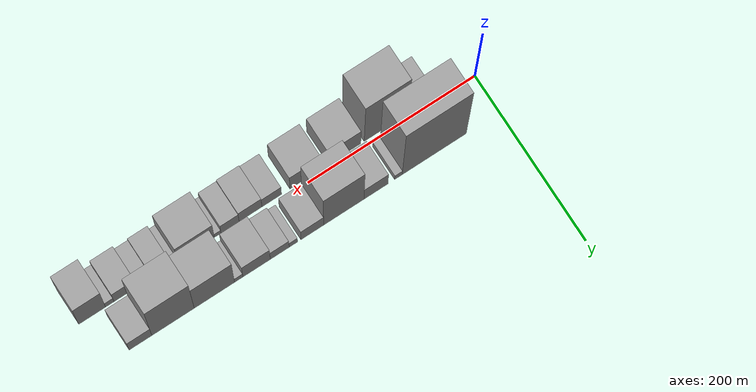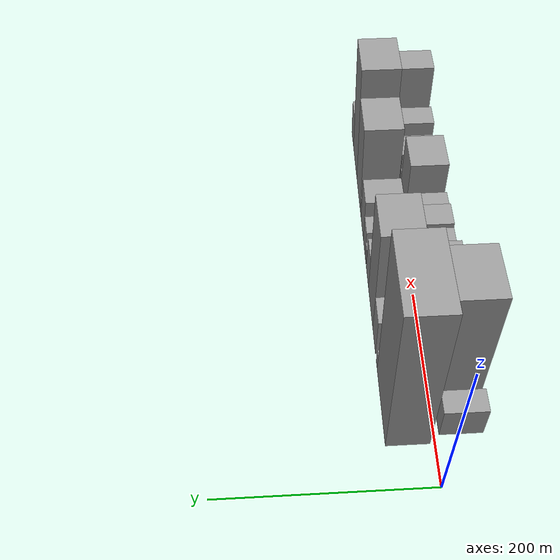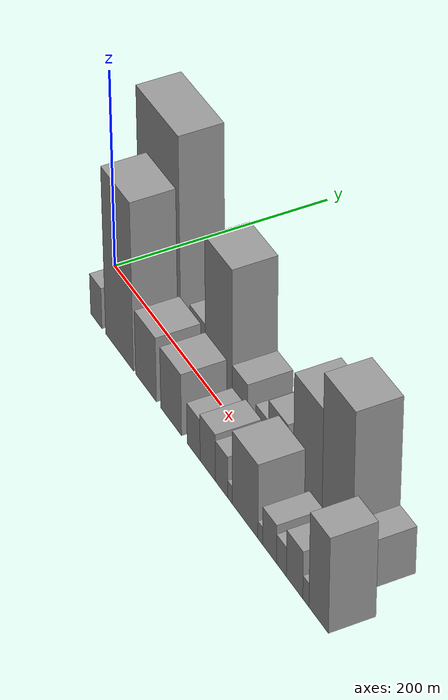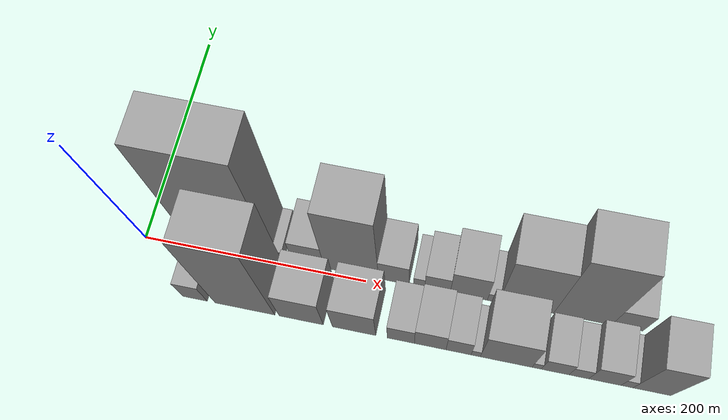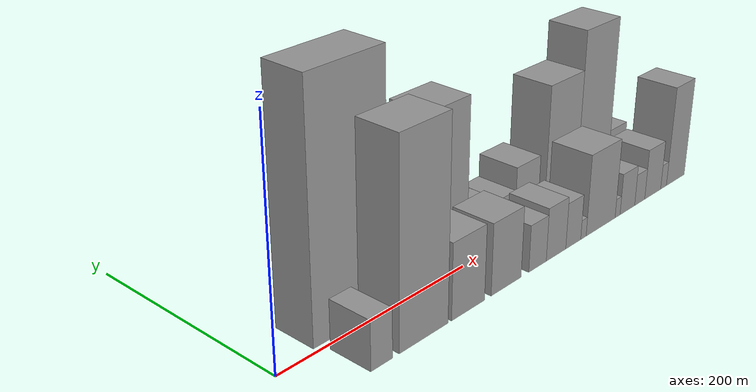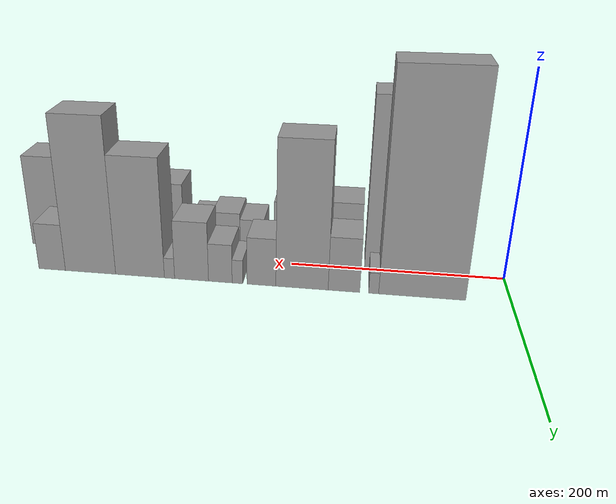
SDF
<sdf version="1.6">
 <world name="default">
  <scene>
   <sky><clouds><speed>12</speed></clouds></sky>
   <ambient>0.4 0.4 0.4 1</ambient>
   <background>0.7 0.7 0.7 1</background>
   <shadows>1</shadows>
  </scene>
  <gravity>0 0 -9.8066</gravity>
  <magnetic_field>6e-06 2.3e-05 -4.2e-05</magnetic_field>
  <physics default="0" name="default_physics" type="ode">
   <ode>
    <solver>
     <type>quick</type>
     <iters>10</iters>
     <sor>1.0</sor>
     <use_dynamic_moi_rescaling>0</use_dynamic_moi_rescaling>
    </solver>
    <constraints>
     <cfm>0</cfm>
     <erp>0.2</erp>
     <contact_max_correcting_vel>100</contact_max_correcting_vel>
     <contact_surface_layer>0.001</contact_surface_layer>
    </constraints>
   </ode>
   <max_step_size>0.004</max_step_size>
   <real_time_factor>1</real_time_factor>
   <real_time_update_rate>250</real_time_update_rate>
  </physics>
  <light name="sun" type="directional">
   <pose>0 0 10 0 0 0</pose>
   <diffuse>0.8 0.8 0.8 1</diffuse>
   <specular>0.2 0.2 0.2 1</specular>
   <attenuation>
    <range>1000</range>
    <constant>0.9</constant>
    <linear>0.01</linear>
    <quadratic>0.001</quadratic>
   </attenuation>
   <direction>-0.5 0.1 -0.9</direction>
  </light>
  <model name="building_1">
   <static>1</static>
   <pose>78.3208 24.5000 0 0.000000 0.000000 1.570796</pose>
   <link name="link">
    <pose>0 0 105.00 0 0 0</pose>
    <collision name="collision"><geometry><box><size>40.0000 76.6416 210.0000</size></box></geometry></collision>
    <visual name="visual">
     <cast_shadows>0</cast_shadows>
     <geometry><box><size>40.0000 76.6416 210.0000</size></box></geometry>
     <material>
      <script>
       <uri>model://grey_wall/materials/scripts</uri>
       <uri>model://grey_wall/materials/textures</uri>
       <name>vrc/grey_wall</name>
      </script>
     </material>
    </visual>
   </link>
  </model>
  <model name="building_2">
   <static>1</static>
   <pose>121.1165 24.5000 0 0.000000 0.000000 1.570796</pose>
   <link name="link">
    <pose>0 0 10.50 0 0 0</pose>
    <collision name="collision"><geometry><box><size>40.0000 8.9498 21.0000</size></box></geometry></collision>
    <visual name="visual">
     <cast_shadows>0</cast_shadows>
     <geometry><box><size>40.0000 8.9498 21.0000</size></box></geometry>
     <material>
      <script>
       <uri>model://grey_wall/materials/scripts</uri>
       <uri>model://grey_wall/materials/textures</uri>
       <name>vrc/grey_wall</name>
      </script>
     </material>
    </visual>
   </link>
  </model>
  <model name="building_3">
   <static>1</static>
   <pose>147.8958 24.5000 0 0.000000 0.000000 1.570796</pose>
   <link name="link">
    <pose>0 0 27.00 0 0 0</pose>
    <collision name="collision"><geometry><box><size>40.0000 28.6089 54.0000</size></box></geometry></collision>
    <visual name="visual">
     <cast_shadows>0</cast_shadows>
     <geometry><box><size>40.0000 28.6089 54.0000</size></box></geometry>
     <material>
      <script>
       <uri>model://grey_wall/materials/scripts</uri>
       <uri>model://grey_wall/materials/textures</uri>
       <name>vrc/grey_wall</name>
      </script>
     </material>
    </visual>
   </link>
  </model>
  <model name="building_4">
   <static>1</static>
   <pose>186.2172 24.5000 0 0.000000 0.000000 1.570796</pose>
   <link name="link">
    <pose>0 0 72.00 0 0 0</pose>
    <collision name="collision"><geometry><box><size>40.0000 48.0339 144.0000</size></box></geometry></collision>
    <visual name="visual">
     <cast_shadows>0</cast_shadows>
     <geometry><box><size>40.0000 48.0339 144.0000</size></box></geometry>
     <material>
      <script>
       <uri>model://grey_wall/materials/scripts</uri>
       <uri>model://grey_wall/materials/textures</uri>
       <name>vrc/grey_wall</name>
      </script>
     </material>
    </visual>
   </link>
  </model>
  <model name="building_5">
   <static>1</static>
   <pose>223.6654 24.5000 0 0.000000 0.000000 1.570796</pose>
   <link name="link">
    <pose>0 0 24.00 0 0 0</pose>
    <collision name="collision"><geometry><box><size>40.0000 26.8624 48.0000</size></box></geometry></collision>
    <visual name="visual">
     <cast_shadows>0</cast_shadows>
     <geometry><box><size>40.0000 26.8624 48.0000</size></box></geometry>
     <material>
      <script>
       <uri>model://grey_wall/materials/scripts</uri>
       <uri>model://grey_wall/materials/textures</uri>
       <name>vrc/grey_wall</name>
      </script>
     </material>
    </visual>
   </link>
  </model>
  <model name="building_6">
   <static>1</static>
   <pose>246.1010 24.5000 0 0.000000 0.000000 1.570796</pose>
   <link name="link">
    <pose>0 0 12.00 0 0 0</pose>
    <collision name="collision"><geometry><box><size>40.0000 10.0088 24.0000</size></box></geometry></collision>
    <visual name="visual">
     <cast_shadows>0</cast_shadows>
     <geometry><box><size>40.0000 10.0088 24.0000</size></box></geometry>
     <material>
      <script>
       <uri>model://grey_wall/materials/scripts</uri>
       <uri>model://grey_wall/materials/textures</uri>
       <name>vrc/grey_wall</name>
      </script>
     </material>
    </visual>
   </link>
  </model>
  <model name="building_7">
   <static>1</static>
   <pose>262.2729 24.5000 0 0.000000 0.000000 1.570796</pose>
   <link name="link">
    <pose>0 0 19.50 0 0 0</pose>
    <collision name="collision"><geometry><box><size>40.0000 22.3350 39.0000</size></box></geometry></collision>
    <visual name="visual">
     <cast_shadows>0</cast_shadows>
     <geometry><box><size>40.0000 22.3350 39.0000</size></box></geometry>
     <material>
      <script>
       <uri>model://grey_wall/materials/scripts</uri>
       <uri>model://grey_wall/materials/textures</uri>
       <name>vrc/grey_wall</name>
      </script>
     </material>
    </visual>
   </link>
  </model>
  <model name="building_8">
   <static>1</static>
   <pose>289.6527 24.5000 0 0.000000 0.000000 1.570796</pose>
   <link name="link">
    <pose>0 0 30.00 0 0 0</pose>
    <collision name="collision"><geometry><box><size>40.0000 32.4248 60.0000</size></box></geometry></collision>
    <visual name="visual">
     <cast_shadows>0</cast_shadows>
     <geometry><box><size>40.0000 32.4248 60.0000</size></box></geometry>
     <material>
      <script>
       <uri>model://grey_wall/materials/scripts</uri>
       <uri>model://grey_wall/materials/textures</uri>
       <name>vrc/grey_wall</name>
      </script>
     </material>
    </visual>
   </link>
  </model>
  <model name="building_9">
   <static>1</static>
   <pose>310.7934 24.5000 0 0.000000 0.000000 1.570796</pose>
   <link name="link">
    <pose>0 0 10.50 0 0 0</pose>
    <collision name="collision"><geometry><box><size>40.0000 9.8566 21.0000</size></box></geometry></collision>
    <visual name="visual">
     <cast_shadows>0</cast_shadows>
     <geometry><box><size>40.0000 9.8566 21.0000</size></box></geometry>
     <material>
      <script>
       <uri>model://grey_wall/materials/scripts</uri>
       <uri>model://grey_wall/materials/textures</uri>
       <name>vrc/grey_wall</name>
      </script>
     </material>
    </visual>
   </link>
  </model>
  <model name="building_10">
   <static>1</static>
   <pose>339.5127 24.5000 0 0.000000 0.000000 1.570796</pose>
   <link name="link">
    <pose>0 0 60.00 0 0 0</pose>
    <collision name="collision"><geometry><box><size>40.0000 47.5821 120.0000</size></box></geometry></collision>
    <visual name="visual">
     <cast_shadows>0</cast_shadows>
     <geometry><box><size>40.0000 47.5821 120.0000</size></box></geometry>
     <material>
      <script>
       <uri>model://grey_wall/materials/scripts</uri>
       <uri>model://grey_wall/materials/textures</uri>
       <name>vrc/grey_wall</name>
      </script>
     </material>
    </visual>
   </link>
  </model>
  <model name="building_11">
   <static>1</static>
   <pose>388.2633 24.5000 0 0.000000 0.000000 1.570796</pose>
   <link name="link">
    <pose>0 0 78.00 0 0 0</pose>
    <collision name="collision"><geometry><box><size>40.0000 49.9190 156.0000</size></box></geometry></collision>
    <visual name="visual">
     <cast_shadows>0</cast_shadows>
     <geometry><box><size>40.0000 49.9190 156.0000</size></box></geometry>
     <material>
      <script>
       <uri>model://grey_wall/materials/scripts</uri>
       <uri>model://grey_wall/materials/textures</uri>
       <name>vrc/grey_wall</name>
      </script>
     </material>
    </visual>
   </link>
  </model>
  <model name="building_12">
   <static>1</static>
   <pose>426.5373 24.5000 0 0.000000 0.000000 1.570796</pose>
   <link name="link">
    <pose>0 0 24.00 0 0 0</pose>
    <collision name="collision"><geometry><box><size>40.0000 26.6289 48.0000</size></box></geometry></collision>
    <visual name="visual">
     <cast_shadows>0</cast_shadows>
     <geometry><box><size>40.0000 26.6289 48.0000</size></box></geometry>
     <material>
      <script>
       <uri>model://grey_wall/materials/scripts</uri>
       <uri>model://grey_wall/materials/textures</uri>
       <name>vrc/grey_wall</name>
      </script>
     </material>
    </visual>
   </link>
  </model>
  <model name="building_13">
   <static>1</static>
   <pose>58.9713 -24.5000 0 0.000000 0.000000 1.570796</pose>
   <link name="link">
    <pose>0 0 21.00 0 0 0</pose>
    <collision name="collision"><geometry><box><size>40.0000 21.9426 42.0000</size></box></geometry></collision>
    <visual name="visual">
     <cast_shadows>0</cast_shadows>
     <geometry><box><size>40.0000 21.9426 42.0000</size></box></geometry>
     <material>
      <script>
       <uri>model://grey_wall/materials/scripts</uri>
       <uri>model://grey_wall/materials/textures</uri>
       <name>vrc/grey_wall</name>
      </script>
     </material>
    </visual>
   </link>
  </model>
  <model name="building_14">
   <static>1</static>
   <pose>103.4341 -24.5000 0 0.000000 0.000000 1.570796</pose>
   <link name="link">
    <pose>0 0 85.50 0 0 0</pose>
    <collision name="collision"><geometry><box><size>40.0000 52.9830 171.0000</size></box></geometry></collision>
    <visual name="visual">
     <cast_shadows>0</cast_shadows>
     <geometry><box><size>40.0000 52.9830 171.0000</size></box></geometry>
     <material>
      <script>
       <uri>model://grey_wall/materials/scripts</uri>
       <uri>model://grey_wall/materials/textures</uri>
       <name>vrc/grey_wall</name>
      </script>
     </material>
    </visual>
   </link>
  </model>
  <model name="building_15">
   <static>1</static>
   <pose>153.2630 -24.5000 0 0.000000 0.000000 1.570796</pose>
   <link name="link">
    <pose>0 0 33.00 0 0 0</pose>
    <collision name="collision"><geometry><box><size>40.0000 38.6747 66.0000</size></box></geometry></collision>
    <visual name="visual">
     <cast_shadows>0</cast_shadows>
     <geometry><box><size>40.0000 38.6747 66.0000</size></box></geometry>
     <material>
      <script>
       <uri>model://grey_wall/materials/scripts</uri>
       <uri>model://grey_wall/materials/textures</uri>
       <name>vrc/grey_wall</name>
      </script>
     </material>
    </visual>
   </link>
  </model>
  <model name="building_16">
   <static>1</static>
   <pose>199.4692 -24.5000 0 0.000000 0.000000 1.570796</pose>
   <link name="link">
    <pose>0 0 31.50 0 0 0</pose>
    <collision name="collision"><geometry><box><size>40.0000 37.7379 63.0000</size></box></geometry></collision>
    <visual name="visual">
     <cast_shadows>0</cast_shadows>
     <geometry><box><size>40.0000 37.7379 63.0000</size></box></geometry>
     <material>
      <script>
       <uri>model://grey_wall/materials/scripts</uri>
       <uri>model://grey_wall/materials/textures</uri>
       <name>vrc/grey_wall</name>
      </script>
     </material>
    </visual>
   </link>
  </model>
  <model name="building_17">
   <static>1</static>
   <pose>240.0087 -24.5000 0 0.000000 0.000000 1.570796</pose>
   <link name="link">
    <pose>0 0 21.00 0 0 0</pose>
    <collision name="collision"><geometry><box><size>40.0000 23.3411 42.0000</size></box></geometry></collision>
    <visual name="visual">
     <cast_shadows>0</cast_shadows>
     <geometry><box><size>40.0000 23.3411 42.0000</size></box></geometry>
     <material>
      <script>
       <uri>model://grey_wall/materials/scripts</uri>
       <uri>model://grey_wall/materials/textures</uri>
       <name>vrc/grey_wall</name>
      </script>
     </material>
    </visual>
   </link>
  </model>
  <model name="building_18">
   <static>1</static>
   <pose>265.1928 -24.5000 0 0.000000 0.000000 1.570796</pose>
   <link name="link">
    <pose>0 0 24.00 0 0 0</pose>
    <collision name="collision"><geometry><box><size>40.0000 27.0270 48.0000</size></box></geometry></collision>
    <visual name="visual">
     <cast_shadows>0</cast_shadows>
     <geometry><box><size>40.0000 27.0270 48.0000</size></box></geometry>
     <material>
      <script>
       <uri>model://grey_wall/materials/scripts</uri>
       <uri>model://grey_wall/materials/textures</uri>
       <name>vrc/grey_wall</name>
      </script>
     </material>
    </visual>
   </link>
  </model>
  <model name="building_19">
   <static>1</static>
   <pose>289.4259 -24.5000 0 0.000000 0.000000 1.570796</pose>
   <link name="link">
    <pose>0 0 21.00 0 0 0</pose>
    <collision name="collision"><geometry><box><size>40.0000 21.4391 42.0000</size></box></geometry></collision>
    <visual name="visual">
     <cast_shadows>0</cast_shadows>
     <geometry><box><size>40.0000 21.4391 42.0000</size></box></geometry>
     <material>
      <script>
       <uri>model://grey_wall/materials/scripts</uri>
       <uri>model://grey_wall/materials/textures</uri>
       <name>vrc/grey_wall</name>
      </script>
     </material>
    </visual>
   </link>
  </model>
  <model name="building_20">
   <static>1</static>
   <pose>304.1029 -24.5000 0 0.000000 0.000000 1.570796</pose>
   <link name="link">
    <pose>0 0 9.00 0 0 0</pose>
    <collision name="collision"><geometry><box><size>40.0000 7.9149 18.0000</size></box></geometry></collision>
    <visual name="visual">
     <cast_shadows>0</cast_shadows>
     <geometry><box><size>40.0000 7.9149 18.0000</size></box></geometry>
     <material>
      <script>
       <uri>model://grey_wall/materials/scripts</uri>
       <uri>model://grey_wall/materials/textures</uri>
       <name>vrc/grey_wall</name>
      </script>
     </material>
    </visual>
   </link>
  </model>
  <model name="building_21">
   <static>1</static>
   <pose>329.9495 -24.5000 0 0.000000 0.000000 1.570796</pose>
   <link name="link">
    <pose>0 0 37.50 0 0 0</pose>
    <collision name="collision"><geometry><box><size>40.0000 43.7782 75.0000</size></box></geometry></collision>
    <visual name="visual">
     <cast_shadows>0</cast_shadows>
     <geometry><box><size>40.0000 43.7782 75.0000</size></box></geometry>
     <material>
      <script>
       <uri>model://grey_wall/materials/scripts</uri>
       <uri>model://grey_wall/materials/textures</uri>
       <name>vrc/grey_wall</name>
      </script>
     </material>
    </visual>
   </link>
  </model>
  <model name="building_22">
   <static>1</static>
   <pose>355.7436 -24.5000 0 0.000000 0.000000 1.570796</pose>
   <link name="link">
    <pose>0 0 9.00 0 0 0</pose>
    <collision name="collision"><geometry><box><size>40.0000 7.8101 18.0000</size></box></geometry></collision>
    <visual name="visual">
     <cast_shadows>0</cast_shadows>
     <geometry><box><size>40.0000 7.8101 18.0000</size></box></geometry>
     <material>
      <script>
       <uri>model://grey_wall/materials/scripts</uri>
       <uri>model://grey_wall/materials/textures</uri>
       <name>vrc/grey_wall</name>
      </script>
     </material>
    </visual>
   </link>
  </model>
  <model name="building_23">
   <static>1</static>
   <pose>371.3393 -24.5000 0 0.000000 0.000000 1.570796</pose>
   <link name="link">
    <pose>0 0 19.50 0 0 0</pose>
    <collision name="collision"><geometry><box><size>40.0000 23.3813 39.0000</size></box></geometry></collision>
    <visual name="visual">
     <cast_shadows>0</cast_shadows>
     <geometry><box><size>40.0000 23.3813 39.0000</size></box></geometry>
     <material>
      <script>
       <uri>model://grey_wall/materials/scripts</uri>
       <uri>model://grey_wall/materials/textures</uri>
       <name>vrc/grey_wall</name>
      </script>
     </material>
    </visual>
   </link>
  </model>
  <model name="building_24">
   <static>1</static>
   <pose>391.2771 -24.5000 0 0.000000 0.000000 1.570796</pose>
   <link name="link">
    <pose>0 0 15.00 0 0 0</pose>
    <collision name="collision"><geometry><box><size>40.0000 16.4942 30.0000</size></box></geometry></collision>
    <visual name="visual">
     <cast_shadows>0</cast_shadows>
     <geometry><box><size>40.0000 16.4942 30.0000</size></box></geometry>
     <material>
      <script>
       <uri>model://grey_wall/materials/scripts</uri>
       <uri>model://grey_wall/materials/textures</uri>
       <name>vrc/grey_wall</name>
      </script>
     </material>
    </visual>
   </link>
  </model>
  <model name="building_25">
   <static>1</static>
   <pose>412.9969 -24.5000 0 0.000000 0.000000 1.570796</pose>
   <link name="link">
    <pose>0 0 24.00 0 0 0</pose>
    <collision name="collision"><geometry><box><size>40.0000 26.9454 48.0000</size></box></geometry></collision>
    <visual name="visual">
     <cast_shadows>0</cast_shadows>
     <geometry><box><size>40.0000 26.9454 48.0000</size></box></geometry>
     <material>
      <script>
       <uri>model://grey_wall/materials/scripts</uri>
       <uri>model://grey_wall/materials/textures</uri>
       <name>vrc/grey_wall</name>
      </script>
     </material>
    </visual>
   </link>
  </model>
  <model name="building_26">
   <static>1</static>
   <pose>431.4201 -24.5000 0 0.000000 0.000000 1.570796</pose>
   <link name="link">
    <pose>0 0 12.00 0 0 0</pose>
    <collision name="collision"><geometry><box><size>40.0000 9.9010 24.0000</size></box></geometry></collision>
    <visual name="visual">
     <cast_shadows>0</cast_shadows>
     <geometry><box><size>40.0000 9.9010 24.0000</size></box></geometry>
     <material>
      <script>
       <uri>model://grey_wall/materials/scripts</uri>
       <uri>model://grey_wall/materials/textures</uri>
       <name>vrc/grey_wall</name>
      </script>
     </material>
    </visual>
   </link>
  </model>
  <model name="building_27">
   <static>1</static>
   <pose>452.1333 -24.5000 0 0.000000 0.000000 1.570796</pose>
   <link name="link">
    <pose>0 0 48.00 0 0 0</pose>
    <collision name="collision"><geometry><box><size>40.0000 31.5254 96.0000</size></box></geometry></collision>
    <visual name="visual">
     <cast_shadows>0</cast_shadows>
     <geometry><box><size>40.0000 31.5254 96.0000</size></box></geometry>
     <material>
      <script>
       <uri>model://grey_wall/materials/scripts</uri>
       <uri>model://grey_wall/materials/textures</uri>
       <name>vrc/grey_wall</name>
      </script>
     </material>
    </visual>
   </link>
  </model>
 </world>
</sdf>
